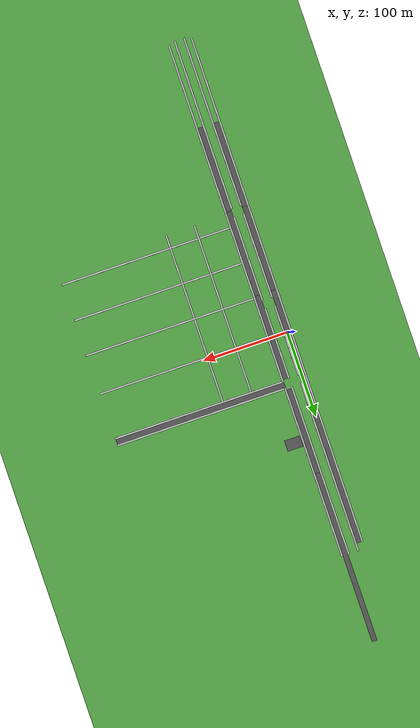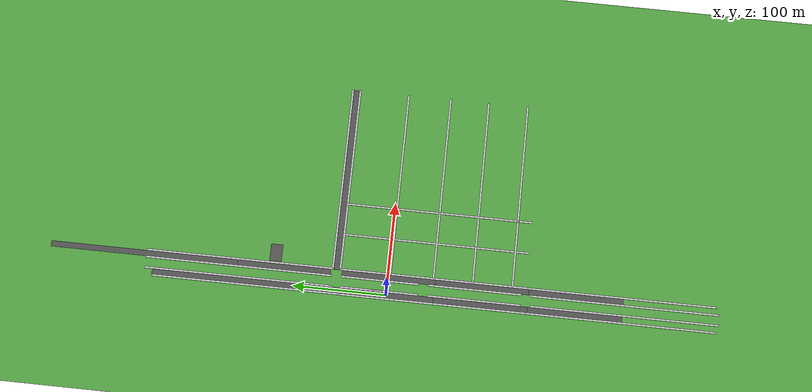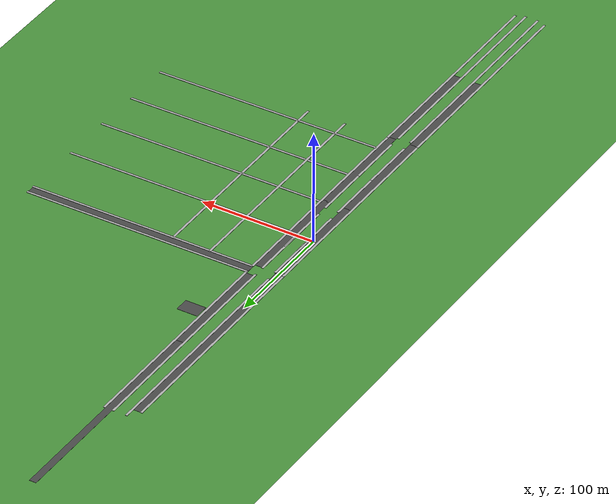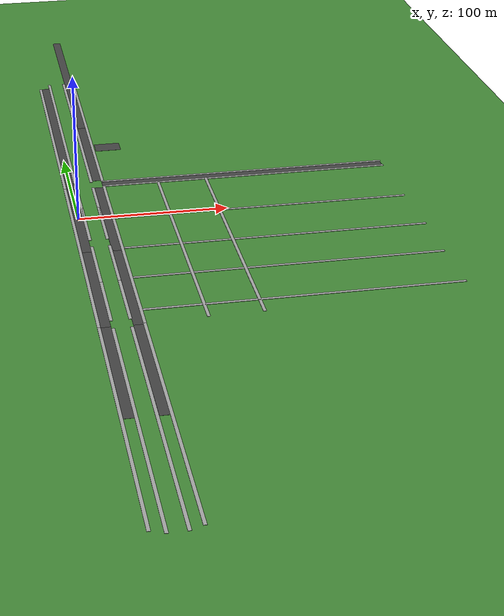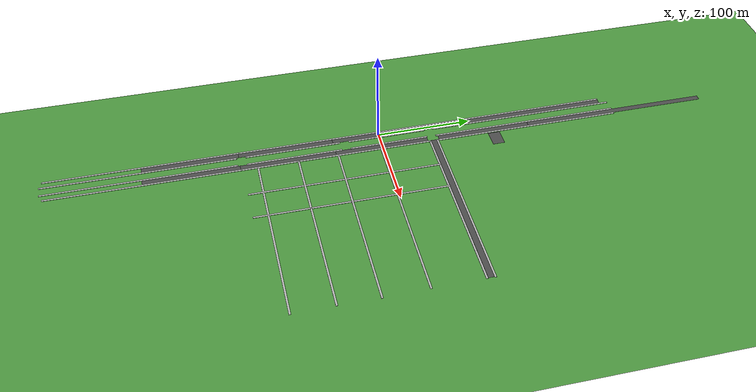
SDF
<sdf version="1.6">
 <world name="default">
  <light name="sun" type="directional">
   <pose>0 0 10 0 -0 0</pose>
   <diffuse>0.8 0.8 0.8 1</diffuse>
   <specular>0.5 0.5 0.5 1</specular>
   <attenuation>
    <range>1000</range>
    <constant>0.9</constant>
    <linear>0.01</linear>
    <quadratic>0.001</quadratic>
   </attenuation>
   <direction>-0.1 0.1 -0.9</direction>
  </light>
  <gravity>0 0 -9.8</gravity>
  <magnetic_field>6e-06 2.3e-05 -4.2e-05</magnetic_field>
  <atmosphere type="adiabatic"/>
  <physics name="default_physics" default="0" type="ode">
   <max_step_size>0.001</max_step_size>
   <real_time_factor>1</real_time_factor>
   <real_time_update_rate>1000</real_time_update_rate>
  </physics>
  <scene>
   <ambient>0.4 0.4 0.4 1</ambient>
   <background>0.7 0.7 0.7 1</background>
   <shadows>1</shadows>
   <sky><time>13</time><clouds><speed>12</speed></clouds></sky>
  </scene>
  <spherical_coordinates>
   <surface_model>EARTH_WGS84</surface_model>
   <latitude_deg>0</latitude_deg>
   <longitude_deg>0</longitude_deg>
   <elevation>0</elevation>
   <heading_deg>0</heading_deg>
  </spherical_coordinates>
  <model name="straight_road_lane_segment">
   <static>1</static>
   <link name="link">
    <collision name="coll">
     <pose>0 0 0.1 0 -0 0</pose>
     <geometry><box><size>6 100 0.1</size></box></geometry>
    </collision>
    <visual name="viz">
     <pose>0 0 0.1 0 -0 0</pose>
     <geometry><box><size>6 100 0.1</size></box></geometry>
     <material>
      <script>
       <uri>model://road_lane_segment_straight/materials/scripts</uri>
       <uri>model://road_lane_segment_straight/materials/textures</uri>
       <name>vrc/road_european</name>
      </script>
     </material>
    </visual>
   </link>
  </model>
  <model name="grass_plane">
   <static>1</static>
   <link name="link">
    <collision name="collision">
     <geometry><plane><size>500 500</size><normal>0 0 1</normal></plane></geometry>
    </collision>
    <visual name="visual">
     <cast_shadows>0</cast_shadows>
     <geometry><plane><size>500 500</size><normal>0 0 1</normal></plane></geometry>
     <material>
      <script>
       <uri>model://grass_plane/materials/scripts</uri>
       <uri>model://grass_plane/materials/textures</uri>
       <name>ftsrg/grass</name>
      </script>
     </material>
    </visual>
   </link>
   <pose>-6.80027 27.2398 0 0 -0 0</pose>
  </model>
  <model name="straight_road_lane_segment_0">
   <static>1</static>
   <link name="link">
    <collision name="coll">
     <pose>0 0 0.1 0 -0 0</pose>
     <geometry><box><size>6 100 0.1</size></box></geometry>
    </collision>
    <visual name="viz">
     <pose>0 0 0.1 0 -0 0</pose>
     <geometry><box><size>6 100 0.1</size></box></geometry>
     <material>
      <script>
       <uri>model://road_lane_segment_straight/materials/scripts</uri>
       <uri>model://road_lane_segment_straight/materials/textures</uri>
       <name>vrc/road_european</name>
      </script>
     </material>
    </visual>
   </link>
   <pose>-0.001604 -99.7987 0 0 -0 0</pose>
  </model>
  <model name="straight_road_lane_segment_1">
   <static>1</static>
   <link name="link">
    <collision name="coll">
     <pose>0 0 0.1 0 -0 0</pose>
     <geometry><box><size>6 100 0.1</size></box></geometry>
    </collision>
    <visual name="viz">
     <pose>0 0 0.1 0 -0 0</pose>
     <geometry><box><size>6 100 0.1</size></box></geometry>
     <material>
      <script>
       <uri>model://road_lane_segment_straight/materials/scripts</uri>
       <uri>model://road_lane_segment_straight/materials/textures</uri>
       <name>vrc/road_european</name>
      </script>
     </material>
    </visual>
   </link>
   <pose>19 -100 0 0 -0 0</pose>
  </model>
  <model name="straight_road_lane_segment_2">
   <static>1</static>
   <link name="link">
    <collision name="coll">
     <pose>0 0 0.1 0 -0 0</pose>
     <geometry><box><size>6 100 0.1</size></box></geometry>
    </collision>
    <visual name="viz">
     <pose>0 0 0.1 0 -0 0</pose>
     <geometry><box><size>6 100 0.1</size></box></geometry>
     <material>
      <script>
       <uri>model://road_lane_segment_straight/materials/scripts</uri>
       <uri>model://road_lane_segment_straight/materials/textures</uri>
       <name>vrc/road_european</name>
      </script>
     </material>
    </visual>
   </link>
   <pose>19 -0.969969 0 0 -0 0</pose>
  </model>
  <model name="sidewalk_long">
   <static>1</static>
   <link name="link">
    <collision name="coll">
     <pose>0 0 0.1 0 -0 0</pose>
     <geometry><box><size>2 200 0.25</size></box></geometry>
    </collision>
    <visual name="viz">
     <pose>0 0 0.1 0 -0 0</pose>
     <geometry><box><size>2 200 0.25</size></box></geometry>
     <material>
      <script>
       <uri>model://sidewalk/materials/scripts</uri>
       <uri>model://sidewalk/materials/textures</uri>
       <name>vrc/sidewalk</name>
      </script>
     </material>
    </visual>
   </link>
   <pose>-4 -49.3853 0 0 -0 0</pose>
  </model>
  <model name="sidewalk_long_2">
   <static>1</static>
   <link name="link">
    <collision name="coll">
     <pose>0 0 0.1 0 -0 0</pose>
     <geometry><box><size>2 200 0.25</size></box></geometry>
    </collision>
    <visual name="viz">
     <pose>0 0 0.1 0 -0 0</pose>
     <geometry><box><size>2 200 0.25</size></box></geometry>
     <material>
      <script>
       <uri>model://sidewalk/materials/scripts</uri>
       <uri>model://sidewalk/materials/textures</uri>
       <name>vrc/sidewalk</name>
      </script>
     </material>
    </visual>
   </link>
   <pose>22.9572 -48.7247 0 0 -0 0</pose>
  </model>
  <model name="straight_road_lane_segment_long">
   <static>1</static>
   <link name="link">
    <collision name="coll">
     <pose>0 0 0.1 0 -0 0</pose>
     <geometry><box><size>6 200 0.1</size></box></geometry>
    </collision>
    <visual name="viz">
     <pose>0 0 0.1 0 -0 0</pose>
     <geometry><box><size>6 200 0.1</size></box></geometry>
     <material>
      <script>
       <uri>model://road_lane_segment_straight_long/materials/scripts</uri>
       <uri>model://road_lane_segment_straight_long/materials/textures</uri>
       <name>vrc/road_european</name>
      </script>
     </material>
    </visual>
   </link>
   <pose>122.099 55.1693 0 0 -0 1.571</pose>
  </model>
  <model name="sidewalk_long_3">
   <static>1</static>
   <link name="link">
    <collision name="coll">
     <pose>0 0 0.1 0 -0 0</pose>
     <geometry><box><size>2 200 0.25</size></box></geometry>
    </collision>
    <visual name="viz">
     <pose>0 0 0.1 0 -0 0</pose>
     <geometry><box><size>2 200 0.25</size></box></geometry>
     <material>
      <script>
       <uri>model://sidewalk/materials/scripts</uri>
       <uri>model://sidewalk/materials/textures</uri>
       <name>vrc/sidewalk</name>
      </script>
     </material>
    </visual>
   </link>
   <pose>122.705 51.1362 0 0 0 -1.571</pose>
  </model>
  <model name="straight_road_lane_segment_3">
   <static>1</static>
   <link name="link">
    <collision name="coll">
     <pose>0 0 0.1 0 -0 0</pose>
     <geometry><box><size>6 100 0.1</size></box></geometry>
    </collision>
    <visual name="viz">
     <pose>0 0 0.1 0 -0 0</pose>
     <geometry><box><size>6 100 0.1</size></box></geometry>
     <material>
      <script>
       <uri>model://road_lane_segment_straight/materials/scripts</uri>
       <uri>model://road_lane_segment_straight/materials/textures</uri>
       <name>vrc/road_european</name>
      </script>
     </material>
    </visual>
   </link>
   <pose>18.9864 111.076 0 0 -0 0</pose>
  </model>
  <model name="straight_road_lane_segment_long_0">
   <static>1</static>
   <link name="link">
    <collision name="coll">
     <pose>0 0 0.1 0 -0 0</pose>
     <geometry><box><size>6 200 0.1</size></box></geometry>
    </collision>
    <visual name="viz">
     <pose>0 0 0.1 0 -0 0</pose>
     <geometry><box><size>6 200 0.1</size></box></geometry>
     <material>
      <script>
       <uri>model://road_lane_segment_straight_long/materials/scripts</uri>
       <uri>model://road_lane_segment_straight_long/materials/textures</uri>
       <name>vrc/road_european</name>
      </script>
     </material>
    </visual>
   </link>
   <pose>0 150 0 0 -0 0</pose>
  </model>
  <model name="straight_road_lane_segment_4">
   <static>1</static>
   <link name="link">
    <collision name="coll">
     <pose>0 0 0.1 0 -0 0</pose>
     <geometry><box><size>6 100 0.1</size></box></geometry>
    </collision>
    <visual name="viz">
     <pose>0 0 0.1 0 -0 0</pose>
     <geometry><box><size>6 100 0.1</size></box></geometry>
     <material>
      <script>
       <uri>model://road_lane_segment_straight/materials/scripts</uri>
       <uri>model://road_lane_segment_straight/materials/textures</uri>
       <name>vrc/road_european</name>
      </script>
     </material>
    </visual>
   </link>
   <pose>0 -199.634 0 0 -0 0</pose>
  </model>
  <model name="sidewalk_long_4">
   <static>1</static>
   <link name="link">
    <collision name="coll">
     <pose>0 0 0.1 0 -0 0</pose>
     <geometry><box><size>2 200 0.25</size></box></geometry>
    </collision>
    <visual name="viz">
     <pose>0 0 0.1 0 -0 0</pose>
     <geometry><box><size>2 200 0.25</size></box></geometry>
     <material>
      <script>
       <uri>model://sidewalk/materials/scripts</uri>
       <uri>model://sidewalk/materials/textures</uri>
       <name>vrc/sidewalk</name>
      </script>
     </material>
    </visual>
   </link>
   <pose>-4 -248.868 0 0 -0 0</pose>
  </model>
  <model name="sidewalk_long_5">
   <static>1</static>
   <link name="link">
    <collision name="coll">
     <pose>0 0 0.1 0 -0 0</pose>
     <geometry><box><size>2 200 0.25</size></box></geometry>
    </collision>
    <visual name="viz">
     <pose>0 0 0.1 0 -0 0</pose>
     <geometry><box><size>2 200 0.25</size></box></geometry>
     <material>
      <script>
       <uri>model://sidewalk/materials/scripts</uri>
       <uri>model://sidewalk/materials/textures</uri>
       <name>vrc/sidewalk</name>
      </script>
     </material>
    </visual>
   </link>
   <pose>3.96644 -251.883 0 0 -0 0</pose>
  </model>
  <model name="straight_road_lane_segment_5">
   <static>1</static>
   <link name="link">
    <collision name="coll">
     <pose>0 0 0.1 0 -0 0</pose>
     <geometry><box><size>6 100 0.1</size></box></geometry>
    </collision>
    <visual name="viz">
     <pose>0 0 0.1 0 -0 0</pose>
     <geometry><box><size>6 100 0.1</size></box></geometry>
     <material>
      <script>
       <uri>model://road_lane_segment_straight/materials/scripts</uri>
       <uri>model://road_lane_segment_straight/materials/textures</uri>
       <name>vrc/road_european</name>
      </script>
     </material>
    </visual>
   </link>
   <pose>18.9999 -199.96 0 0 -0 0</pose>
  </model>
  <model name="sidewalk_long_6">
   <static>1</static>
   <link name="link">
    <collision name="coll">
     <pose>0 0 0.1 0 -0 0</pose>
     <geometry><box><size>2 200 0.25</size></box></geometry>
    </collision>
    <visual name="viz">
     <pose>0 0 0.1 0 -0 0</pose>
     <geometry><box><size>2 200 0.25</size></box></geometry>
     <material>
      <script>
       <uri>model://sidewalk/materials/scripts</uri>
       <uri>model://sidewalk/materials/textures</uri>
       <name>vrc/sidewalk</name>
      </script>
     </material>
    </visual>
   </link>
   <pose>22.8578 -248.818 0 0 -0 0</pose>
  </model>
  <model name="sidewalk_long_7">
   <static>1</static>
   <link name="link">
    <collision name="coll">
     <pose>0 0 0.1 0 -0 0</pose>
     <geometry><box><size>2 200 0.25</size></box></geometry>
    </collision>
    <visual name="viz">
     <pose>0 0 0.1 0 -0 0</pose>
     <geometry><box><size>2 200 0.25</size></box></geometry>
     <material>
      <script>
       <uri>model://sidewalk/materials/scripts</uri>
       <uri>model://sidewalk/materials/textures</uri>
       <name>vrc/sidewalk</name>
      </script>
     </material>
    </visual>
   </link>
   <pose>14.9703 -251.811 0 0 -0 0</pose>
  </model>
  <model name="sidewalk_long_9">
   <static>1</static>
   <link name="link">
    <collision name="coll">
     <pose>0 0 0.1 0 -0 0</pose>
     <geometry><box><size>2 200 0.25</size></box></geometry>
    </collision>
    <visual name="viz">
     <pose>0 0 0.1 0 -0 0</pose>
     <geometry><box><size>2 200 0.25</size></box></geometry>
     <material>
      <script>
       <uri>model://sidewalk/materials/scripts</uri>
       <uri>model://sidewalk/materials/textures</uri>
       <name>vrc/sidewalk</name>
      </script>
     </material>
    </visual>
   </link>
   <pose>-3.89873 150.228 0 0 -0 0</pose>
  </model>
  <model name="sidewalk_long_11">
   <static>1</static>
   <link name="link">
    <collision name="coll">
     <pose>0 0 0.1 0 -0 0</pose>
     <geometry><box><size>2 200 0.25</size></box></geometry>
    </collision>
    <visual name="viz">
     <pose>0 0 0.1 0 -0 0</pose>
     <geometry><box><size>2 200 0.25</size></box></geometry>
     <material>
      <script>
       <uri>model://sidewalk/materials/scripts</uri>
       <uri>model://sidewalk/materials/textures</uri>
       <name>vrc/sidewalk</name>
      </script>
     </material>
    </visual>
   </link>
   <pose>22.9924 158.948 0 0 -0 0</pose>
  </model>
  <model name="sidewalk_long_12">
   <static>1</static>
   <link name="link">
    <collision name="coll">
     <pose>0 0 0.1 0 -0 0</pose>
     <geometry><box><size>2 200 0.25</size></box></geometry>
    </collision>
    <visual name="viz">
     <pose>0 0 0.1 0 -0 0</pose>
     <geometry><box><size>2 200 0.25</size></box></geometry>
     <material>
      <script>
       <uri>model://sidewalk/materials/scripts</uri>
       <uri>model://sidewalk/materials/textures</uri>
       <name>vrc/sidewalk</name>
      </script>
     </material>
    </visual>
   </link>
   <pose>122.689 -2.04987 0 0 -0 1.571</pose>
  </model>
  <model name="sidewalk_long_13">
   <static>1</static>
   <link name="link">
    <collision name="coll">
     <pose>0 0 0.1 0 -0 0</pose>
     <geometry><box><size>2 200 0.25</size></box></geometry>
    </collision>
    <visual name="viz">
     <pose>0 0 0.1 0 -0 0</pose>
     <geometry><box><size>2 200 0.25</size></box></geometry>
     <material>
      <script>
       <uri>model://sidewalk/materials/scripts</uri>
       <uri>model://sidewalk/materials/textures</uri>
       <name>vrc/sidewalk</name>
      </script>
     </material>
    </visual>
   </link>
   <pose>123.748 -48.0032 0 0 -0 1.571</pose>
  </model>
  <model name="sidewalk_long_14">
   <static>1</static>
   <link name="link">
    <collision name="coll">
     <pose>0 0 0.1 0 -0 0</pose>
     <geometry><box><size>2 200 0.25</size></box></geometry>
    </collision>
    <visual name="viz">
     <pose>0 0 0.1 0 -0 0</pose>
     <geometry><box><size>2 200 0.25</size></box></geometry>
     <material>
      <script>
       <uri>model://sidewalk/materials/scripts</uri>
       <uri>model://sidewalk/materials/textures</uri>
       <name>vrc/sidewalk</name>
      </script>
     </material>
    </visual>
   </link>
   <pose>60.8611 -47.5767 0 0 -0 0</pose>
  </model>
  <model name="sidewalk_long_15">
   <static>1</static>
   <link name="link">
    <collision name="coll">
     <pose>0 0 0.1 0 -0 0</pose>
     <geometry><box><size>2 200 0.25</size></box></geometry>
    </collision>
    <visual name="viz">
     <pose>0 0 0.1 0 -0 0</pose>
     <geometry><box><size>2 200 0.25</size></box></geometry>
     <material>
      <script>
       <uri>model://sidewalk/materials/scripts</uri>
       <uri>model://sidewalk/materials/textures</uri>
       <name>vrc/sidewalk</name>
      </script>
     </material>
    </visual>
   </link>
   <pose>94.4623 -47.4129 0 0 -0 0</pose>
  </model>
  <model name="sidewalk_long_16">
   <static>1</static>
   <link name="link">
    <collision name="coll">
     <pose>0 0 0.1 0 -0 0</pose>
     <geometry><box><size>2 200 0.25</size></box></geometry>
    </collision>
    <visual name="viz">
     <pose>0 0 0.1 0 -0 0</pose>
     <geometry><box><size>2 200 0.25</size></box></geometry>
     <material>
      <script>
       <uri>model://sidewalk/materials/scripts</uri>
       <uri>model://sidewalk/materials/textures</uri>
       <name>vrc/sidewalk</name>
      </script>
     </material>
    </visual>
   </link>
   <pose>123.057 -89.7666 0 0 -0 1.57285</pose>
  </model>
  <model name="sidewalk_long_17">
   <static>1</static>
   <link name="link">
    <collision name="coll">
     <pose>0 0 0.1 0 -0 0</pose>
     <geometry><box><size>2 200 0.25</size></box></geometry>
    </collision>
    <visual name="viz">
     <pose>0 0 0.1 0 -0 0</pose>
     <geometry><box><size>2 200 0.25</size></box></geometry>
     <material>
      <script>
       <uri>model://sidewalk/materials/scripts</uri>
       <uri>model://sidewalk/materials/textures</uri>
       <name>vrc/sidewalk</name>
      </script>
     </material>
    </visual>
   </link>
   <pose>123.339 -132.128 0 0 -0 1.571</pose>
  </model>
  <model name="sidewalk_long_18">
   <static>1</static>
   <link name="link">
    <collision name="coll">
     <pose>0 0 0.1 0 -0 0</pose>
     <geometry><box><size>2 200 0.25</size></box></geometry>
    </collision>
    <visual name="viz">
     <pose>0 0 0.1 0 -0 0</pose>
     <geometry><box><size>2 200 0.25</size></box></geometry>
     <material>
      <script>
       <uri>model://sidewalk/materials/scripts</uri>
       <uri>model://sidewalk/materials/textures</uri>
       <name>vrc/sidewalk</name>
      </script>
     </material>
    </visual>
   </link>
   <pose>122.737 59.2187 0 0 -0 1.571</pose>
  </model>
  <model name="asphalt_plane">
   <static>1</static>
   <link name="link">
    <collision name="collision"><geometry><box><size>18.0712 12.6827 0.1</size></box></geometry></collision>
    <visual name="visual">
     <cast_shadows>0</cast_shadows>
     <geometry><box><size>18.0712 12.6827 0.1</size></box></geometry>
     <material>
      <script>
       <uri>model://asphalt_plane/materials/scripts</uri>
       <uri>model://asphalt_plane/materials/textures</uri>
       <name>vrc/asphalt</name>
      </script>
     </material>
    </visual>
   </link>
   <pose>33.8421 120.963 0 0 -0 0</pose>
  </model>
  <model name="straight_road_lane_segment_long_1">
   <static>1</static>
   <link name="link">
    <collision name="coll">
     <pose>0 0 0.1 0 -0 0</pose>
     <geometry><box><size>6 200 0.1</size></box></geometry>
    </collision>
    <visual name="viz">
     <pose>0 0 0.1 0 -0 0</pose>
     <geometry><box><size>6 200 0.1</size></box></geometry>
     <material>
      <script>
       <uri>model://road_lane_segment_straight_long/materials/scripts</uri>
       <uri>model://road_lane_segment_straight_long/materials/textures</uri>
       <name>vrc/road_european</name>
      </script>
     </material>
    </visual>
   </link>
   <pose>19 260.87 0 0 -0 0</pose>
  </model>
  <model name="sidewalk_50m">
   <static>1</static>
   <link name="link">
    <collision name="coll">
     <pose>0 0 0.1 0 -0 0</pose>
     <geometry><box><size>2 50 0.25</size></box></geometry>
    </collision>
    <visual name="viz">
     <pose>0 0 0.1 0 -0 0</pose>
     <geometry><box><size>2 50 0.25</size></box></geometry>
     <material>
      <script>
       <uri>model://sidewalk/materials/scripts</uri>
       <uri>model://sidewalk/materials/textures</uri>
       <name>vrc/sidewalk</name>
      </script>
     </material>
    </visual>
   </link>
   <pose>3.99035 -117.538 0 0 -0 0</pose>
  </model>
  <model name="sidewalk_50m_0">
   <static>1</static>
   <link name="link">
    <collision name="coll">
     <pose>0 0 0.1 0 -0 0</pose>
     <geometry><box><size>2 50 0.25</size></box></geometry>
    </collision>
    <visual name="viz">
     <pose>0 0 0.1 0 -0 0</pose>
     <geometry><box><size>2 50 0.25</size></box></geometry>
     <material>
      <script>
       <uri>model://sidewalk/materials/scripts</uri>
       <uri>model://sidewalk/materials/textures</uri>
       <name>vrc/sidewalk</name>
      </script>
     </material>
    </visual>
   </link>
   <pose>15.3423 -117.446 0 0 -0 0</pose>
  </model>
  <model name="sidewalk_50m_1">
   <static>1</static>
   <link name="link">
    <collision name="coll">
     <pose>0 0 0.1 0 -0 0</pose>
     <geometry><box><size>2 50 0.25</size></box></geometry>
    </collision>
    <visual name="viz">
     <pose>0 0 0.1 0 -0 0</pose>
     <geometry><box><size>2 50 0.25</size></box></geometry>
     <material>
      <script>
       <uri>model://sidewalk/materials/scripts</uri>
       <uri>model://sidewalk/materials/textures</uri>
       <name>vrc/sidewalk</name>
      </script>
     </material>
    </visual>
   </link>
   <pose>3.94764 -67.5894 0 0 -0 0</pose>
  </model>
  <model name="sidewalk_50m_2">
   <static>1</static>
   <link name="link">
    <collision name="coll">
     <pose>0 0 0.1 0 -0 0</pose>
     <geometry><box><size>2 50 0.25</size></box></geometry>
    </collision>
    <visual name="viz">
     <pose>0 0 0.1 0 -0 0</pose>
     <geometry><box><size>2 50 0.25</size></box></geometry>
     <material>
      <script>
       <uri>model://sidewalk/materials/scripts</uri>
       <uri>model://sidewalk/materials/textures</uri>
       <name>vrc/sidewalk</name>
      </script>
     </material>
    </visual>
   </link>
   <pose>15.342 -67.5083 0 0 -0 0</pose>
  </model>
  <model name="sidewalk_50m_3">
   <static>1</static>
   <link name="link">
    <collision name="coll">
     <pose>0 0 0.1 0 -0 0</pose>
     <geometry><box><size>2 50 0.25</size></box></geometry>
    </collision>
    <visual name="viz">
     <pose>0 0 0.1 0 -0 0</pose>
     <geometry><box><size>2 50 0.25</size></box></geometry>
     <material>
      <script>
       <uri>model://sidewalk/materials/scripts</uri>
       <uri>model://sidewalk/materials/textures</uri>
       <name>vrc/sidewalk</name>
      </script>
     </material>
    </visual>
   </link>
   <pose>15.2492 -8.19262 0 0 -0 0</pose>
  </model>
  <model name="sidewalk_50m_4">
   <static>1</static>
   <link name="link">
    <collision name="coll">
     <pose>0 0 0.1 0 -0 0</pose>
     <geometry><box><size>2 50 0.25</size></box></geometry>
    </collision>
    <visual name="viz">
     <pose>0 0 0.1 0 -0 0</pose>
     <geometry><box><size>2 50 0.25</size></box></geometry>
     <material>
      <script>
       <uri>model://sidewalk/materials/scripts</uri>
       <uri>model://sidewalk/materials/textures</uri>
       <name>vrc/sidewalk</name>
      </script>
     </material>
    </visual>
   </link>
   <pose>3.97554 -8.20364 0 0 -0 0</pose>
  </model>
  <model name="sidewalk_50m_5">
   <static>1</static>
   <link name="link">
    <collision name="coll">
     <pose>0 0 0.1 0 -0 0</pose>
     <geometry><box><size>2 50 0.25</size></box></geometry>
    </collision>
    <visual name="viz">
     <pose>0 0 0.1 0 -0 0</pose>
     <geometry><box><size>2 50 0.25</size></box></geometry>
     <material>
      <script>
       <uri>model://sidewalk/materials/scripts</uri>
       <uri>model://sidewalk/materials/textures</uri>
       <name>vrc/sidewalk</name>
      </script>
     </material>
    </visual>
   </link>
   <pose>15.2359 24.6322 0 0 -0 0</pose>
  </model>
  <model name="sidewalk_50m_6">
   <static>1</static>
   <link name="link">
    <collision name="coll">
     <pose>0 0 0.1 0 -0 0</pose>
     <geometry><box><size>2 50 0.25</size></box></geometry>
    </collision>
    <visual name="viz">
     <pose>0 0 0.1 0 -0 0</pose>
     <geometry><box><size>2 50 0.25</size></box></geometry>
     <material>
      <script>
       <uri>model://sidewalk/materials/scripts</uri>
       <uri>model://sidewalk/materials/textures</uri>
       <name>vrc/sidewalk</name>
      </script>
     </material>
    </visual>
   </link>
   <pose>3.8571 24.6771 0 0 -0 0</pose>
  </model>
  <model name="sidewalk_long_0">
   <static>1</static>
   <link name="link">
    <collision name="coll">
     <pose>0 0 0.1 0 -0 0</pose>
     <geometry><box><size>2 200 0.25</size></box></geometry>
    </collision>
    <visual name="viz">
     <pose>0 0 0.1 0 -0 0</pose>
     <geometry><box><size>2 200 0.25</size></box></geometry>
     <material>
      <script>
       <uri>model://sidewalk/materials/scripts</uri>
       <uri>model://sidewalk/materials/textures</uri>
       <name>vrc/sidewalk</name>
      </script>
     </material>
    </visual>
   </link>
   <pose>15.2022 158.998 0 0 -0 0</pose>
  </model>
  <model name="sidewalk_long_1">
   <static>1</static>
   <link name="link">
    <collision name="coll">
     <pose>0 0 0.1 0 -0 0</pose>
     <geometry><box><size>2 200 0.25</size></box></geometry>
    </collision>
    <visual name="viz">
     <pose>0 0 0.1 0 -0 0</pose>
     <geometry><box><size>2 200 0.25</size></box></geometry>
     <material>
      <script>
       <uri>model://sidewalk/materials/scripts</uri>
       <uri>model://sidewalk/materials/textures</uri>
       <name>vrc/sidewalk</name>
      </script>
     </material>
    </visual>
   </link>
   <pose>3.80026 158.817 0 0 -0 0</pose>
  </model>
 </world>
</sdf>
